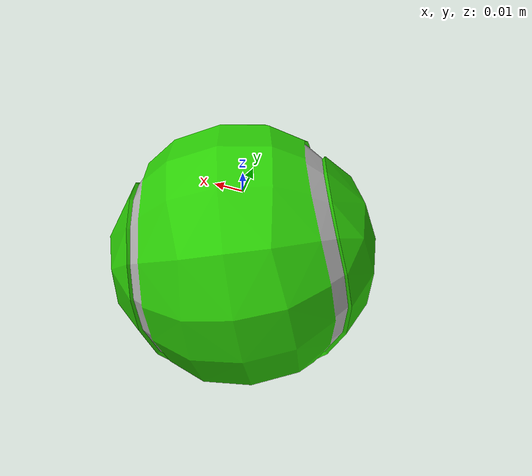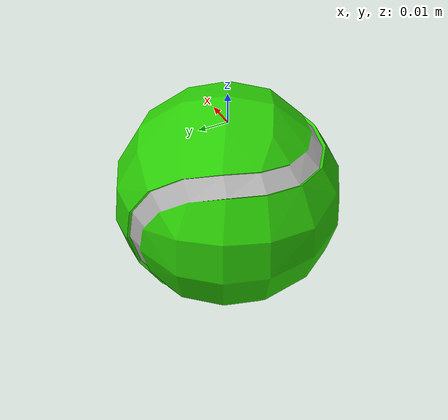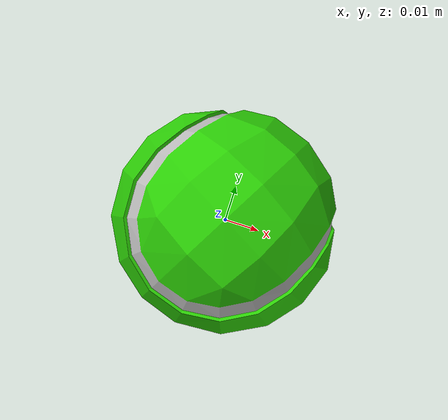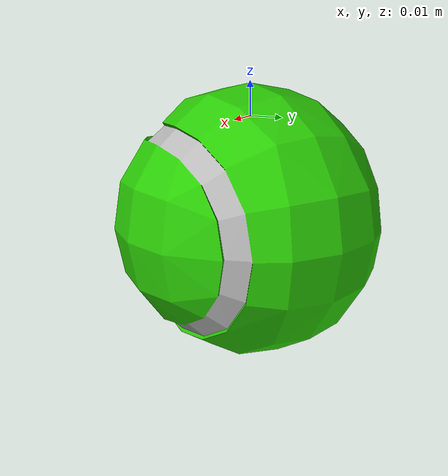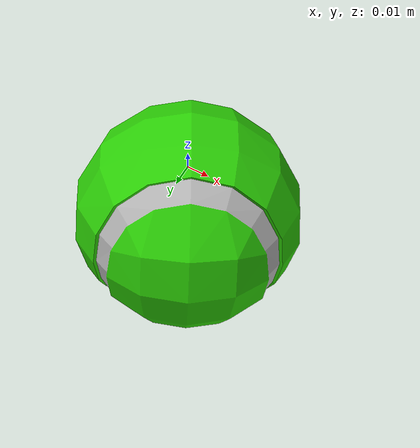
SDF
<?xml version='1.0' ?>
<sdf version='1.6'>
  <model name='TennisBall'>
    <static>true</static>
    <link name='link'>
      <pose>0 0 0 0 0 0</pose>
      <collision name='collision'>
        <geometry>
          <mesh>
            <uri>model://TennisBall/meshes/ball.dae</uri>
            <scale>0.04 0.04 0.04</scale>
          </mesh>
        </geometry>
      </collision>
      <visual name='visual'>
        <geometry>
          <mesh>
            <uri>model://TennisBall/meshes/ball.dae</uri>
            <scale>0.04 0.04 0.04</scale>
          </mesh>
        </geometry>
      </visual>
    </link>
  </model>
</sdf>
